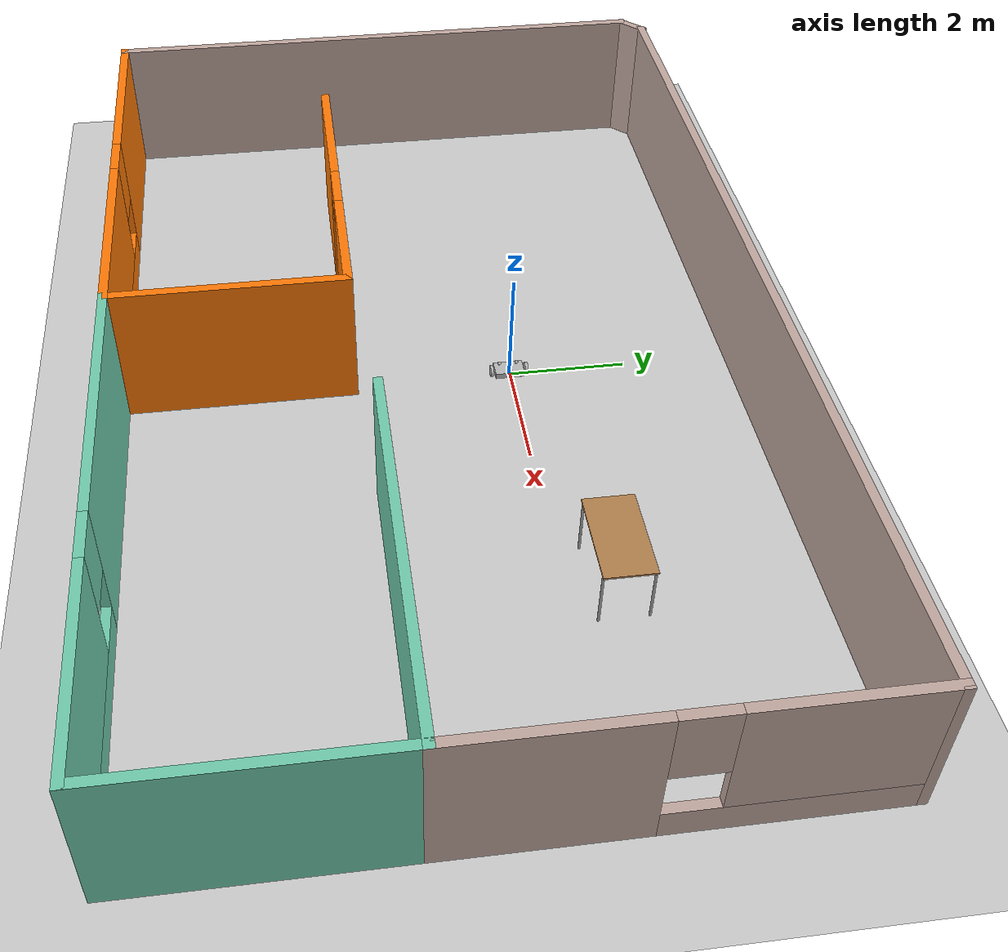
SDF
<sdf version="1.6">
 <world name="default">
  <model name="ground_plane">
   <static>1</static>
   <link name="link">
    <collision name="collision">
     <geometry><plane><normal>0 0 1</normal><size>100 100</size></plane></geometry>
     <surface><friction><ode><mu>100</mu><mu2>50</mu2></ode></friction></surface>
    </collision>
    <visual name="visual">
     <cast_shadows>0</cast_shadows>
     <geometry><plane><normal>0 0 1</normal><size>100 100</size></plane></geometry>
     <material>
      <script><uri>file://media/materials/scripts/gazebo.material</uri><name>Gazebo/Grey</name></script>
     </material>
    </visual>
   </link>
  </model>
  <model name="table">
   <static>1</static>
   <link name="link">
    <collision name="surface">
     <pose>0 0 1 0 -0 0</pose>
     <geometry><box><size>1.5 0.8 0.03</size></box></geometry>
     <surface><friction><ode><mu>0.6</mu><mu2>0.6</mu2></ode></friction></surface>
    </collision>
    <visual name="visual1">
     <pose>0 0 1 0 -0 0</pose>
     <geometry><box><size>1.5 0.8 0.03</size></box></geometry>
     <material>
      <script><uri>file://media/materials/scripts/gazebo.material</uri><name>Gazebo/Wood</name></script>
     </material>
    </visual>
    <collision name="front_left_leg">
     <pose>0.68 0.38 0.5 0 -0 0</pose>
     <geometry><cylinder><radius>0.02</radius><length>1</length></cylinder></geometry>
    </collision>
    <visual name="front_left_leg">
     <pose>0.68 0.38 0.5 0 -0 0</pose>
     <geometry><cylinder><radius>0.02</radius><length>1</length></cylinder></geometry>
     <material>
      <script><uri>file://media/materials/scripts/gazebo.material</uri><name>Gazebo/Grey</name></script>
     </material>
    </visual>
    <collision name="front_right_leg">
     <pose>0.68 -0.38 0.5 0 -0 0</pose>
     <geometry><cylinder><radius>0.02</radius><length>1</length></cylinder></geometry>
    </collision>
    <visual name="front_right_leg">
     <pose>0.68 -0.38 0.5 0 -0 0</pose>
     <geometry><cylinder><radius>0.02</radius><length>1</length></cylinder></geometry>
     <material>
      <script><uri>file://media/materials/scripts/gazebo.material</uri><name>Gazebo/Grey</name></script>
     </material>
    </visual>
    <collision name="back_right_leg">
     <pose>-0.68 -0.38 0.5 0 -0 0</pose>
     <geometry><cylinder><radius>0.02</radius><length>1</length></cylinder></geometry>
    </collision>
    <visual name="back_right_leg">
     <pose>-0.68 -0.38 0.5 0 -0 0</pose>
     <geometry><cylinder><radius>0.02</radius><length>1</length></cylinder></geometry>
     <material>
      <script><uri>file://media/materials/scripts/gazebo.material</uri><name>Gazebo/Grey</name></script>
     </material>
    </visual>
    <collision name="back_left_leg">
     <pose>-0.68 0.38 0.5 0 -0 0</pose>
     <geometry><cylinder><radius>0.02</radius><length>1</length></cylinder></geometry>
    </collision>
    <visual name="back_left_leg">
     <pose>-0.68 0.38 0.5 0 -0 0</pose>
     <geometry><cylinder><radius>0.02</radius><length>1</length></cylinder></geometry>
     <material>
      <script><uri>file://media/materials/scripts/gazebo.material</uri><name>Gazebo/Grey</name></script>
     </material>
    </visual>
   </link>
   <pose>4.82921 0.731806 0.12916 0 -0 0</pose>
  </model>
  <model name="house">
   <pose>0.48898 -1.33717 0 0 -0 0</pose>
   <link name="Wall_0">
    <collision name="Wall_0_Collision">
     <geometry><box><size>10.25 0.15 2.5</size></box></geometry>
     <pose>0 0 1.25 0 -0 0</pose>
    </collision>
    <visual name="Wall_0_Visual">
     <pose>0 0 1.25 0 -0 0</pose>
     <geometry><box><size>10.25 0.15 2.5</size></box></geometry>
     <material>
      <script><uri>file://media/materials/scripts/gazebo.material</uri><name>Gazebo/Grey</name></script>
      <ambient>0.760784 0.662745 0.627451 1</ambient>
     </material>
     <meta><layer>0</layer></meta>
    </visual>
    <pose>-8.20947 -0.190533 0 0 0 -1.5708</pose>
   </link>
   <link name="Wall_10">
    <pose>8.24053 2.03447 0 0 -0 1.5708</pose>
    <visual name="Wall_10_Visual_0">
     <pose>-1.78129 0 1.25 0 -0 0</pose>
     <geometry><box><size>2.93743 0.15 2.5</size></box></geometry>
     <material>
      <script><uri>file://media/materials/scripts/gazebo.material</uri><name>Gazebo/Grey</name></script>
      <ambient>0.760784 0.662745 0.627451 1</ambient>
     </material>
     <meta><layer>0</layer></meta>
    </visual>
    <collision name="Wall_10_Collision_0">
     <geometry><box><size>2.93743 0.15 2.5</size></box></geometry>
     <pose>-1.78129 0 1.25 0 -0 0</pose>
    </collision>
    <visual name="Wall_10_Visual_1">
     <pose>1.46871 0 0.25 0 -0 0</pose>
     <geometry><box><size>3.56257 0.15 0.5</size></box></geometry>
     <material>
      <script><uri>file://media/materials/scripts/gazebo.material</uri><name>Gazebo/Grey</name></script>
      <ambient>0.760784 0.662745 0.627451 1</ambient>
     </material>
     <meta><layer>0</layer></meta>
    </visual>
    <collision name="Wall_10_Collision_1">
     <geometry><box><size>3.56257 0.15 0.5</size></box></geometry>
     <pose>1.46871 0 0.25 0 -0 0</pose>
    </collision>
    <visual name="Wall_10_Visual_2">
     <pose>1.86871 0 1.5 0 -0 0</pose>
     <geometry><box><size>2.76258 0.15 2</size></box></geometry>
     <material>
      <script><uri>file://media/materials/scripts/gazebo.material</uri><name>Gazebo/Grey</name></script>
      <ambient>0.760784 0.662745 0.627451 1</ambient>
     </material>
     <meta><layer>0</layer></meta>
    </visual>
    <collision name="Wall_10_Collision_2">
     <geometry><box><size>2.76258 0.15 2</size></box></geometry>
     <pose>1.86871 0 1.5 0 -0 0</pose>
    </collision>
    <visual name="Wall_10_Visual_3">
     <pose>0.087425 0 1.9 0 -0 0</pose>
     <geometry><box><size>0.8 0.15 1.2</size></box></geometry>
     <material>
      <script><uri>file://media/materials/scripts/gazebo.material</uri><name>Gazebo/Grey</name></script>
      <ambient>0.760784 0.662745 0.627451 1</ambient>
     </material>
     <meta><layer>0</layer></meta>
    </visual>
    <collision name="Wall_10_Collision_3">
     <geometry><box><size>0.8 0.15 1.2</size></box></geometry>
     <pose>0.087425 0 1.9 0 -0 0</pose>
    </collision>
   </link>
   <link name="Wall_11">
    <collision name="Wall_11_Collision">
     <geometry><box><size>16.25 0.15 2.5</size></box></geometry>
     <pose>0 0 1.25 0 -0 0</pose>
    </collision>
    <visual name="Wall_11_Visual">
     <pose>0 0 1.25 0 -0 0</pose>
     <geometry><box><size>16.25 0.15 2.5</size></box></geometry>
     <material>
      <script><uri>file://media/materials/scripts/gazebo.material</uri><name>Gazebo/Grey</name></script>
      <ambient>0.760784 0.662745 0.627451 1</ambient>
     </material>
     <meta><layer>0</layer></meta>
    </visual>
    <pose>0.190533 5.20947 0 0 -0 3.14159</pose>
   </link>
   <link name="Wall_12">
    <collision name="Wall_12_Collision">
     <geometry><box><size>0.644975 0.15 2.5</size></box></geometry>
     <pose>0 0 1.25 0 -0 0</pose>
    </collision>
    <visual name="Wall_12_Visual">
     <pose>0 0 1.25 0 -0 0</pose>
     <geometry><box><size>0.644975 0.15 2.5</size></box></geometry>
     <material>
      <script><uri>file://media/materials/scripts/gazebo.material</uri><name>Gazebo/Grey</name></script>
      <ambient>0.760784 0.662745 0.627451 1</ambient>
     </material>
     <meta><layer>0</layer></meta>
    </visual>
    <pose>-8.03447 5.03447 0 0 0 -2.35619</pose>
   </link>
   <link name="Wall_2">
    <pose>-4.28447 -5.24053 0 0 -0 0</pose>
    <visual name="Wall_2_Visual_0">
     <pose>-2.2462 0 1.25 0 -0 0</pose>
     <geometry><box><size>3.5076 0.15 2.5</size></box></geometry>
     <material>
      <script><uri>file://media/materials/scripts/gazebo.material</uri><name>Gazebo/Grey</name></script>
      <ambient>0.996078 0.47451 0.0196078 1</ambient>
     </material>
     <meta><layer>0</layer></meta>
    </visual>
    <collision name="Wall_2_Collision_0">
     <geometry><box><size>3.5076 0.15 2.5</size></box></geometry>
     <pose>-2.2462 0 1.25 0 -0 0</pose>
    </collision>
    <visual name="Wall_2_Visual_1">
     <pose>1.7538 0 0.25 0 -0 0</pose>
     <geometry><box><size>4.4924 0.15 0.5</size></box></geometry>
     <material>
      <script><uri>file://media/materials/scripts/gazebo.material</uri><name>Gazebo/Grey</name></script>
      <ambient>0.996078 0.47451 0.0196078 1</ambient>
     </material>
     <meta><layer>0</layer></meta>
    </visual>
    <collision name="Wall_2_Collision_1">
     <geometry><box><size>4.4924 0.15 0.5</size></box></geometry>
     <pose>1.7538 0 0.25 0 -0 0</pose>
    </collision>
    <visual name="Wall_2_Visual_2">
     <pose>2.1538 0 1.5 0 -0 0</pose>
     <geometry><box><size>3.69239 0.15 2</size></box></geometry>
     <material>
      <script><uri>file://media/materials/scripts/gazebo.material</uri><name>Gazebo/Grey</name></script>
      <ambient>0.996078 0.47451 0.0196078 1</ambient>
     </material>
     <meta><layer>0</layer></meta>
    </visual>
    <collision name="Wall_2_Collision_2">
     <geometry><box><size>3.69239 0.15 2</size></box></geometry>
     <pose>2.1538 0 1.5 0 -0 0</pose>
    </collision>
    <visual name="Wall_2_Visual_3">
     <pose>-0.092395 0 1.9 0 -0 0</pose>
     <geometry><box><size>0.8 0.15 1.2</size></box></geometry>
     <material>
      <script><uri>file://media/materials/scripts/gazebo.material</uri><name>Gazebo/Grey</name></script>
      <ambient>0.996078 0.47451 0.0196078 1</ambient>
     </material>
     <meta><layer>0</layer></meta>
    </visual>
    <collision name="Wall_2_Collision_3">
     <geometry><box><size>0.8 0.15 1.2</size></box></geometry>
     <pose>-0.092395 0 1.9 0 -0 0</pose>
    </collision>
   </link>
   <link name="Wall_3">
    <collision name="Wall_3_Collision">
     <geometry><box><size>4 0.15 2.5</size></box></geometry>
     <pose>0 0 1.25 0 -0 0</pose>
    </collision>
    <visual name="Wall_3_Visual">
     <pose>0 0 1.25 0 -0 0</pose>
     <geometry><box><size>4 0.15 2.5</size></box></geometry>
     <material>
      <script><uri>file://media/materials/scripts/gazebo.material</uri><name>Gazebo/Grey</name></script>
      <ambient>0.996078 0.47451 0.0196078 1</ambient>
     </material>
     <meta><layer>0</layer></meta>
    </visual>
    <pose>-0.359467 -3.31553 0 0 -0 1.5708</pose>
   </link>
   <link name="Wall_4">
    <pose>-3.15947 -1.39053 0 0 -0 3.14159</pose>
    <visual name="Wall_4_Visual_0">
     <pose>-1.76861 0 1.25 0 -0 0</pose>
     <geometry><box><size>2.21277 0.15 2.5</size></box></geometry>
     <material>
      <script><uri>file://media/materials/scripts/gazebo.material</uri><name>Gazebo/Grey</name></script>
      <ambient>0.996078 0.47451 0.0196078 1</ambient>
     </material>
     <meta><layer>0</layer></meta>
    </visual>
    <collision name="Wall_4_Collision_0">
     <geometry><box><size>2.21277 0.15 2.5</size></box></geometry>
     <pose>-1.76861 0 1.25 0 -0 0</pose>
    </collision>
    <visual name="Wall_4_Visual_1">
     <pose>1.55639 0 1.25 0 -0 0</pose>
     <geometry><box><size>2.63723 0.15 2.5</size></box></geometry>
     <material>
      <script><uri>file://media/materials/scripts/gazebo.material</uri><name>Gazebo/Grey</name></script>
      <ambient>0.996078 0.47451 0.0196078 1</ambient>
     </material>
     <meta><layer>0</layer></meta>
    </visual>
    <collision name="Wall_4_Collision_1">
     <geometry><box><size>2.63723 0.15 2.5</size></box></geometry>
     <pose>1.55639 0 1.25 0 -0 0</pose>
    </collision>
    <visual name="Wall_4_Visual_2">
     <pose>-0.212228 0 2.25 0 -0 0</pose>
     <geometry><box><size>0.9 0.15 0.5</size></box></geometry>
     <material>
      <script><uri>file://media/materials/scripts/gazebo.material</uri><name>Gazebo/Grey</name></script>
      <ambient>0.996078 0.47451 0.0196078 1</ambient>
     </material>
     <meta><layer>0</layer></meta>
    </visual>
    <collision name="Wall_4_Collision_2">
     <geometry><box><size>0.9 0.15 0.5</size></box></geometry>
     <pose>-0.212228 0 2.25 0 -0 0</pose>
    </collision>
   </link>
   <link name="Wall_6">
    <pose>3.94053 -5.24053 0 0 -0 0</pose>
    <visual name="Wall_6_Visual_0">
     <pose>-2.05962 0 1.25 0 -0 0</pose>
     <geometry><box><size>4.63077 0.15 2.5</size></box></geometry>
     <material>
      <script><uri>file://media/materials/scripts/gazebo.material</uri><name>Gazebo/Grey</name></script>
      <ambient>0.435294 0.796078 0.67451 1</ambient>
     </material>
     <meta><layer>0</layer></meta>
    </visual>
    <collision name="Wall_6_Collision_0">
     <geometry><box><size>4.63077 0.15 2.5</size></box></geometry>
     <pose>-2.05962 0 1.25 0 -0 0</pose>
    </collision>
    <visual name="Wall_6_Visual_1">
     <pose>2.31538 0 0.25 0 -0 0</pose>
     <geometry><box><size>4.11923 0.15 0.5</size></box></geometry>
     <material>
      <script><uri>file://media/materials/scripts/gazebo.material</uri><name>Gazebo/Grey</name></script>
      <ambient>0.435294 0.796078 0.67451 1</ambient>
     </material>
     <meta><layer>0</layer></meta>
    </visual>
    <collision name="Wall_6_Collision_1">
     <geometry><box><size>4.11923 0.15 0.5</size></box></geometry>
     <pose>2.31538 0 0.25 0 -0 0</pose>
    </collision>
    <visual name="Wall_6_Visual_2">
     <pose>2.71538 0 1.5 0 -0 0</pose>
     <geometry><box><size>3.31923 0.15 2</size></box></geometry>
     <material>
      <script><uri>file://media/materials/scripts/gazebo.material</uri><name>Gazebo/Grey</name></script>
      <ambient>0.435294 0.796078 0.67451 1</ambient>
     </material>
     <meta><layer>0</layer></meta>
    </visual>
    <collision name="Wall_6_Collision_2">
     <geometry><box><size>3.31923 0.15 2</size></box></geometry>
     <pose>2.71538 0 1.5 0 -0 0</pose>
    </collision>
    <visual name="Wall_6_Visual_3">
     <pose>0.655767 0 1.9 0 -0 0</pose>
     <geometry><box><size>0.8 0.15 1.2</size></box></geometry>
     <material>
      <script><uri>file://media/materials/scripts/gazebo.material</uri><name>Gazebo/Grey</name></script>
      <ambient>0.435294 0.796078 0.67451 1</ambient>
     </material>
     <meta><layer>0</layer></meta>
    </visual>
    <collision name="Wall_6_Collision_3">
     <geometry><box><size>0.8 0.15 1.2</size></box></geometry>
     <pose>0.655767 0 1.9 0 -0 0</pose>
    </collision>
   </link>
   <link name="Wall_7">
    <collision name="Wall_7_Collision">
     <geometry><box><size>4.25 0.15 2.5</size></box></geometry>
     <pose>0 0 1.25 0 -0 0</pose>
    </collision>
    <visual name="Wall_7_Visual">
     <pose>0 0 1.25 0 -0 0</pose>
     <geometry><box><size>4.25 0.15 2.5</size></box></geometry>
     <material>
      <script><uri>file://media/materials/scripts/gazebo.material</uri><name>Gazebo/Grey</name></script>
      <ambient>0.435294 0.796078 0.67451 1</ambient>
     </material>
     <meta><layer>0</layer></meta>
    </visual>
    <pose>8.24053 -3.19053 0 0 -0 1.5708</pose>
   </link>
   <link name="Wall_8">
    <collision name="Wall_8_Collision">
     <geometry><box><size>6.25 0.15 2.5</size></box></geometry>
     <pose>0 0 1.25 0 -0 0</pose>
    </collision>
    <visual name="Wall_8_Visual">
     <pose>0 0 1.25 0 -0 0</pose>
     <geometry><box><size>6.25 0.15 2.5</size></box></geometry>
     <material>
      <script><uri>file://media/materials/scripts/gazebo.material</uri><name>Gazebo/Grey</name></script>
      <ambient>0.435294 0.796078 0.67451 1</ambient>
     </material>
     <meta><layer>0</layer></meta>
    </visual>
    <pose>5.19053 -1.14053 0 0 -0 3.14159</pose>
   </link>
   <static>1</static>
  </model>
  <model name="my_robot">
   <link name="robot_footprint">
    <inertial>
     <pose>0.001325 0 0 0 -0 0</pose>
     <mass>15.1</mass>
     <inertia>
      <ixx>0.100002</ixx>
      <ixy>0</ixy>
      <ixz>-1.48675e-07</ixz>
      <iyy>0.103976</iyy>
      <iyz>0</iyz>
      <izz>0.103976</izz>
     </inertia>
    </inertial>
    <collision name="robot_footprint_fixed_joint_lump__collision_collision">
     <geometry><box><size>0.3 0.5 0.1</size></box></geometry>
    </collision>
    <collision name="robot_footprint_fixed_joint_lump__back_caster_collision_collision_1">
     <pose>-0.1 0 -0.05 0 -0 0</pose>
     <geometry><sphere><radius>0.0499</radius></sphere></geometry>
    </collision>
    <collision name="robot_footprint_fixed_joint_lump__front_caster_collision_collision_2">
     <pose>0.1 0 -0.05 0 -0 0</pose>
     <geometry><sphere><radius>0.0499</radius></sphere></geometry>
    </collision>
    <collision name="robot_footprint_fixed_joint_lump__left_eye_collision_collision_3">
     <pose>-0.1 0.15 0.07 0 -0 0</pose>
     <geometry><sphere><radius>0.03</radius></sphere></geometry>
    </collision>
    <collision name="robot_footprint_fixed_joint_lump__right_eye_collision_collision_4">
     <pose>-0.1 -0.15 0.07 0 -0 0</pose>
     <geometry><sphere><radius>0.03</radius></sphere></geometry>
    </collision>
    <collision name="robot_footprint_fixed_joint_lump__camera_collision_collision_5">
     <pose>0.2 0 0 0 -0 0</pose>
     <geometry><box><size>0.05 0.05 0.05</size></box></geometry>
    </collision>
    <collision name="robot_footprint_fixed_joint_lump__hokuyo_collision_collision_6">
     <pose>0.15 0 0.1 0 -0 0</pose>
     <geometry>
      <mesh><scale>1 1 1</scale><uri>/home/workspace/catkin_ws/src/my_robot/meshes/hokuyo.dae</uri></mesh>
     </geometry>
    </collision>
    <visual name="robot_footprint_fixed_joint_lump__chassis_visual_visual">
     <geometry><box><size>0.3 0.5 0.1</size></box></geometry>
    </visual>
    <visual name="robot_footprint_fixed_joint_lump__back_caster_visual_visual_1">
     <pose>-0.1 0 -0.05 0 -0 0</pose>
     <geometry><sphere><radius>0.05</radius></sphere></geometry>
    </visual>
    <visual name="robot_footprint_fixed_joint_lump__front_caster_visual_visual_2">
     <pose>0.1 0 -0.05 0 -0 0</pose>
     <geometry><sphere><radius>0.05</radius></sphere></geometry>
    </visual>
    <visual name="robot_footprint_fixed_joint_lump__left_eye_visual_visual_3">
     <pose>-0.1 0.15 0.07 0 -0 0</pose>
     <geometry><sphere><radius>0.03</radius></sphere></geometry>
    </visual>
    <visual name="robot_footprint_fixed_joint_lump__right_eye_visual_visual_4">
     <pose>-0.1 -0.15 0.07 0 -0 0</pose>
     <geometry><sphere><radius>0.03</radius></sphere></geometry>
    </visual>
    <visual name="robot_footprint_fixed_joint_lump__camera_visual_visual_5">
     <pose>0.2 0 0 0 -0 0</pose>
     <geometry><box><size>0.05 0.05 0.05</size></box></geometry>
     <material>
      <script><name>Gazebo/Green</name><uri>file://media/materials/scripts/gazebo.material</uri></script>
     </material>
    </visual>
    <visual name="robot_footprint_fixed_joint_lump__hokuyo_visual_visual_6">
     <pose>0.15 0 0.1 0 -0 0</pose>
     <geometry><box><size>0.05 0.05 0.05</size></box></geometry>
     <material><script><uri>__default__</uri><name>__default__</name></script></material>
    </visual>
    <sensor name="camera1" type="depth">
     <always_on>1</always_on>
     <update_rate>20</update_rate>
     <visualize>1</visualize>
     <camera name="__default__">
      <horizontal_fov>1.047</horizontal_fov>
      <image><width>640</width><height>480</height><format>R8G8B8</format></image>
      <depth_camera><output>depths</output></depth_camera>
      <clip><near>0.1</near><far>20</far></clip>
     </camera>
     <plugin name="camera_controller" filename="libgazebo_ros_openni_kinect.so">
      <alwaysOn>true</alwaysOn>
      <updateRate>10.0</updateRate>
      <cameraName>camera</cameraName>
      <frameName>camera_link_optical</frameName>
      <imageTopicName>rgb/image_raw</imageTopicName>
      <depthImageTopicName>depth/image_raw</depthImageTopicName>
      <pointCloudTopicName>depth/points</pointCloudTopicName>
      <cameraInfoTopicName>rgb/camera_info</cameraInfoTopicName>
      <depthImageCameraInfoTopicName>depth/camera_info</depthImageCameraInfoTopicName>
      <pointCloudCutoff>0.4</pointCloudCutoff>
      <hackBaseline>0.07</hackBaseline>
      <distortionK1>0.0</distortionK1>
      <distortionK2>0.0</distortionK2>
      <distortionK3>0.0</distortionK3>
      <distortionT1>0.0</distortionT1>
      <distortionT2>0.0</distortionT2>
      <CxPrime>0.0</CxPrime>
      <Cx>0.0</Cx>
      <Cy>0.0</Cy>
      <focalLength>0.0</focalLength>
      <robotNamespace>/</robotNamespace>
     </plugin>
     <pose>0.2 0 0 0 -0 0</pose>
    </sensor>
    <sensor name="head_hokuyo_sensor" type="ray">
     <visualize>0</visualize>
     <update_rate>40</update_rate>
     <ray>
      <scan>
       <horizontal>
        <samples>720</samples>
        <resolution>1</resolution>
        <min_angle>-1.5708</min_angle>
        <max_angle>1.5708</max_angle>
       </horizontal>
       <vertical><samples>1</samples><min_angle>0</min_angle><max_angle>0</max_angle></vertical>
      </scan>
      <range><min>0.1</min><max>30</max><resolution>0.01</resolution></range>
      <noise><type>gaussian</type><mean>0</mean><stddev>0.01</stddev></noise>
     </ray>
     <plugin name="gazebo_ros_head_hokuyo_controller" filename="libgazebo_ros_laser.so">
      <topicName>/scan</topicName>
      <frameName>hokuyo</frameName>
      <robotNamespace>/</robotNamespace>
     </plugin>
     <pose>0.15 0 0.1 0 -0 0</pose>
    </sensor>
   </link>
   <link name="left_wheel">
    <pose>0 0.3 0 0 -0 0</pose>
    <inertial>
     <pose>0 0 0 -0 1.5707 1.5707</pose>
     <mass>5</mass>
     <inertia><ixx>0.1</ixx><ixy>0</ixy><ixz>0</ixz><iyy>0.1</iyy><iyz>0</iyz><izz>0.1</izz></inertia>
    </inertial>
    <collision name="left_wheel_collision_collision">
     <pose>0 0 0 3.14159 1.57079 -1.57089</pose>
     <geometry><cylinder><length>0.05</length><radius>0.1</radius></cylinder></geometry>
    </collision>
    <visual name="left_wheel_visual_visual">
     <pose>0 0 0 3.14159 1.57079 -1.57089</pose>
     <geometry><cylinder><length>0.05</length><radius>0.1</radius></cylinder></geometry>
    </visual>
   </link>
   <joint name="left_wheel_hinge" type="revolute">
    <child>left_wheel</child>
    <parent>robot_footprint</parent>
    <axis>
     <xyz>0 1 0</xyz>
     <limit><lower>-1e+16</lower><upper>1e+16</upper></limit>
     <dynamics>
      <damping>1</damping>
      <friction>1</friction>
      <spring_reference>0</spring_reference>
      <spring_stiffness>0</spring_stiffness>
     </dynamics>
     <use_parent_model_frame>1</use_parent_model_frame>
    </axis>
   </joint>
   <link name="right_wheel">
    <pose>0 -0.3 0 0 -0 0</pose>
    <inertial>
     <pose>0 0 0 -0 1.5707 1.5707</pose>
     <mass>5</mass>
     <inertia><ixx>0.1</ixx><ixy>0</ixy><ixz>0</ixz><iyy>0.1</iyy><iyz>0</iyz><izz>0.1</izz></inertia>
    </inertial>
    <collision name="right_wheel_collision_collision">
     <pose>0 0 0 3.14159 1.57079 -1.57089</pose>
     <geometry><cylinder><length>0.05</length><radius>0.1</radius></cylinder></geometry>
    </collision>
    <visual name="right_wheel_visual_visual">
     <pose>0 0 0 3.14159 1.57079 -1.57089</pose>
     <geometry><cylinder><length>0.05</length><radius>0.1</radius></cylinder></geometry>
    </visual>
   </link>
   <joint name="right_wheel_hinge" type="revolute">
    <child>right_wheel</child>
    <parent>robot_footprint</parent>
    <axis>
     <xyz>0 1 0</xyz>
     <limit><lower>-1e+16</lower><upper>1e+16</upper></limit>
     <dynamics>
      <damping>1</damping>
      <friction>1</friction>
      <spring_reference>0</spring_reference>
      <spring_stiffness>0</spring_stiffness>
     </dynamics>
     <use_parent_model_frame>1</use_parent_model_frame>
    </axis>
   </joint>
   <static>0</static>
   <plugin name="differential_drive_controller" filename="libgazebo_ros_diff_drive.so">
    <legacyMode>false</legacyMode>
    <alwaysOn>true</alwaysOn>
    <updateRate>10</updateRate>
    <leftJoint>left_wheel_hinge</leftJoint>
    <rightJoint>right_wheel_hinge</rightJoint>
    <wheelSeparation>0.4</wheelSeparation>
    <wheelDiameter>0.2</wheelDiameter>
    <torque>10</torque>
    <commandTopic>cmd_vel</commandTopic>
    <odometryTopic>odom</odometryTopic>
    <odometryFrame>odom</odometryFrame>
    <robotBaseFrame>robot_footprint</robotBaseFrame>
    <publishWheelTF>false</publishWheelTF>
    <publishWheelJointState>false</publishWheelJointState>
    <rosDebugLevel>na</rosDebugLevel>
    <wheelAcceleration>0</wheelAcceleration>
    <wheelTorque>5</wheelTorque>
    <odometrySource>world</odometrySource>
    <publishTf>1</publishTf>
    <publishOdomTF>true</publishOdomTF>
    <robotNamespace>/</robotNamespace>
   </plugin>
   <pose>0.001773 -0.024602 0.1 1e-06 0.000937 0.015783</pose>
  </model>
  <model name="cart_rigid_suspension">
   <link name="chassis">
    <pose>0 0 0.15 0 -0 0</pose>
    <inertial>
     <pose>0.1 0 0 0 -0 0</pose>
     <mass>10</mass>
     <inertia>
      <ixx>0.216667</ixx>
      <iyy>0.841667</iyy>
      <izz>1.04167</izz>
      <ixy>0</ixy>
      <ixz>0</ixz>
      <iyz>0</iyz>
     </inertia>
    </inertial>
    <collision name="collision"><geometry><box><size>1 0.5 0.1</size></box></geometry></collision>
    <visual name="visual">
     <geometry><box><size>1 0.5 0.1</size></box></geometry>
     <material>
      <script><uri>file://media/materials/scripts/gazebo.material</uri><name>Gazebo/Grey</name></script>
     </material>
    </visual>
   </link>
   <link name="wheel_front_left">
    <pose>0.5 0.298 0.15 -1.5708 0 0</pose>
    <inertial>
     <mass>0.5</mass>
     <inertia>
      <ixx>0.00307917</ixx>
      <iyy>0.00307917</iyy>
      <izz>0.005625</izz>
      <ixy>0</ixy>
      <ixz>0</ixz>
      <iyz>0</iyz>
     </inertia>
    </inertial>
    <collision name="collision">
     <geometry><cylinder><radius>0.15</radius><length>0.08</length></cylinder></geometry>
    </collision>
    <visual name="visual">
     <geometry><cylinder><radius>0.15</radius><length>0.08</length></cylinder></geometry>
     <material>
      <script><uri>file://media/materials/scripts/gazebo.material</uri><name>Gazebo/Black</name></script>
     </material>
    </visual>
   </link>
   <joint name="wheel_front_left_spin" type="revolute">
    <parent>chassis</parent>
    <child>wheel_front_left</child>
    <axis>
     <xyz>0 0 1</xyz>
     <use_parent_model_frame>0</use_parent_model_frame>
     <limit><lower>-1e+16</lower><upper>1e+16</upper></limit>
     <dynamics><spring_reference>0</spring_reference><spring_stiffness>0</spring_stiffness></dynamics>
    </axis>
   </joint>
   <link name="wheel_front_right">
    <pose>0.5 -0.298 0.15 -1.5708 0 0</pose>
    <inertial>
     <mass>0.5</mass>
     <inertia>
      <ixx>0.00307917</ixx>
      <iyy>0.00307917</iyy>
      <izz>0.005625</izz>
      <ixy>0</ixy>
      <ixz>0</ixz>
      <iyz>0</iyz>
     </inertia>
    </inertial>
    <collision name="collision">
     <geometry><cylinder><radius>0.15</radius><length>0.08</length></cylinder></geometry>
    </collision>
    <visual name="visual">
     <geometry><cylinder><radius>0.15</radius><length>0.08</length></cylinder></geometry>
     <material>
      <script><uri>file://media/materials/scripts/gazebo.material</uri><name>Gazebo/Black</name></script>
     </material>
    </visual>
   </link>
   <joint name="wheel_front_right_spin" type="revolute">
    <parent>chassis</parent>
    <child>wheel_front_right</child>
    <axis>
     <xyz>0 0 1</xyz>
     <use_parent_model_frame>0</use_parent_model_frame>
     <limit><lower>-1e+16</lower><upper>1e+16</upper></limit>
     <dynamics><spring_reference>0</spring_reference><spring_stiffness>0</spring_stiffness></dynamics>
    </axis>
   </joint>
   <link name="wheel_rear_left">
    <pose>-0.5 0.298 0.15 -1.5708 0 0</pose>
    <inertial>
     <mass>0.5</mass>
     <inertia>
      <ixx>0.00307917</ixx>
      <iyy>0.00307917</iyy>
      <izz>0.005625</izz>
      <ixy>0</ixy>
      <ixz>0</ixz>
      <iyz>0</iyz>
     </inertia>
    </inertial>
    <collision name="collision">
     <geometry><cylinder><radius>0.15</radius><length>0.08</length></cylinder></geometry>
    </collision>
    <visual name="visual">
     <geometry><cylinder><radius>0.15</radius><length>0.08</length></cylinder></geometry>
     <material>
      <script><uri>file://media/materials/scripts/gazebo.material</uri><name>Gazebo/Black</name></script>
     </material>
    </visual>
   </link>
   <joint name="wheel_rear_left_spin" type="revolute">
    <parent>chassis</parent>
    <child>wheel_rear_left</child>
    <axis>
     <xyz>0 0 1</xyz>
     <use_parent_model_frame>0</use_parent_model_frame>
     <limit><lower>-1e+16</lower><upper>1e+16</upper></limit>
     <dynamics><spring_reference>0</spring_reference><spring_stiffness>0</spring_stiffness></dynamics>
    </axis>
   </joint>
   <link name="wheel_rear_right">
    <pose>-0.5 -0.298 0.15 -1.5708 0 0</pose>
    <inertial>
     <mass>0.5</mass>
     <inertia>
      <ixx>0.00307917</ixx>
      <iyy>0.00307917</iyy>
      <izz>0.005625</izz>
      <ixy>0</ixy>
      <ixz>0</ixz>
      <iyz>0</iyz>
     </inertia>
    </inertial>
    <collision name="collision">
     <geometry><cylinder><radius>0.15</radius><length>0.08</length></cylinder></geometry>
    </collision>
    <visual name="visual">
     <geometry><cylinder><radius>0.15</radius><length>0.08</length></cylinder></geometry>
     <material>
      <script><uri>file://media/materials/scripts/gazebo.material</uri><name>Gazebo/Black</name></script>
     </material>
    </visual>
   </link>
   <joint name="wheel_rear_right_spin" type="revolute">
    <parent>chassis</parent>
    <child>wheel_rear_right</child>
    <axis>
     <xyz>0 0 1</xyz>
     <use_parent_model_frame>0</use_parent_model_frame>
     <limit><lower>-1e+16</lower><upper>1e+16</upper></limit>
     <dynamics><spring_reference>0</spring_reference><spring_stiffness>0</spring_stiffness></dynamics>
    </axis>
   </joint>
   <pose>7.85076 2.30152 0 0 -0 0.048533</pose>
  </model>
 </world>
</sdf>
